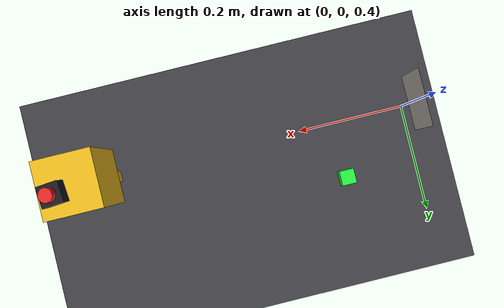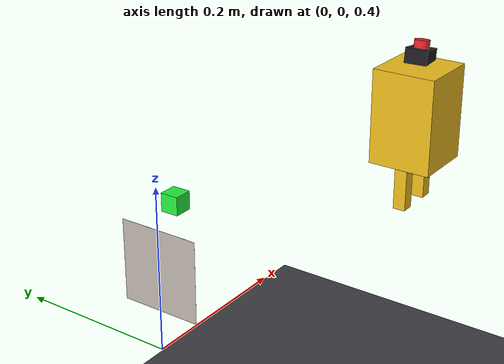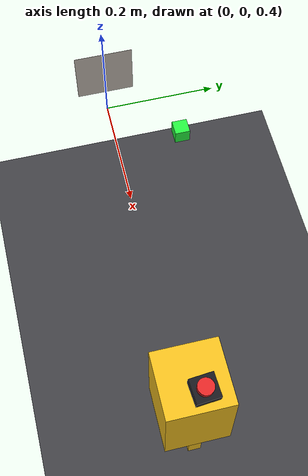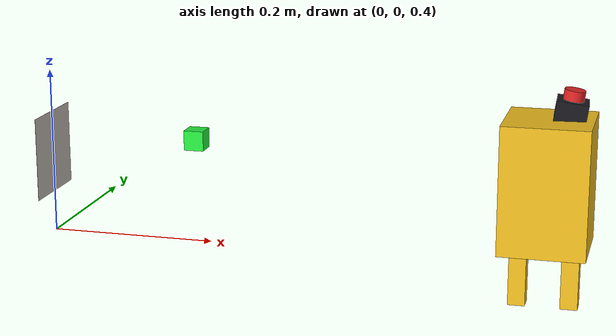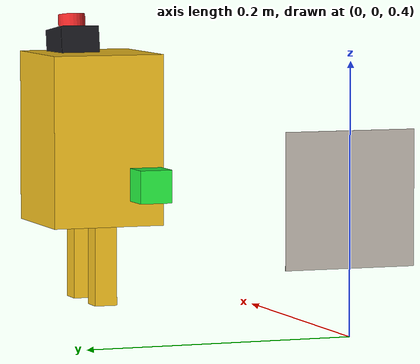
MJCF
<mujoco model="eye_in_hand_calib">
  <compiler angle="radian" autolimits="true"/>
  <option gravity="0 0 0" timestep="0.002"/>

  <visual>
    <global offwidth="1280" offheight="720"/>
    <quality shadowsize="4096"/>
    <rgba fog="0 0 0 0"/>
  </visual>

  <asset>
    <texture name="grid_tex" type="2d" builtin="checker" width="256" height="256"
             rgb1="0.22 0.22 0.24" rgb2="0.28 0.28 0.30"/>
    <material name="grid_mat" texture="grid_tex" texrepeat="6 6"
              specular="0.1" shininess="0.1"/>

    <texture name="aruco_tex" type="2d" file="assets/aruco_marker.png"/>
    <!-- emission=1 guarantees white cells render as full white regardless of
         lighting, which the ArUco detector needs for corner contrast. -->
    <material name="aruco_mat" texture="aruco_tex"
              specular="0" shininess="0" emission="1.0" rgba="1 1 1 1"/>

    <material name="gripper_mat" rgba="0.95 0.75 0.12 1" specular="0.2" shininess="0.3"/>
    <material name="camera_mat"  rgba="0.10 0.10 0.12 1" specular="0.3" shininess="0.4"/>
    <material name="cube_true_mat"  rgba="0.15 0.95 0.25 1"    emission="0.35" specular="0.2" shininess="0.2"/>
    <material name="cube_ghost_mat" rgba="0.98 0.12 0.18 0.55" emission="0.45" specular="0.0" shininess="0.0"/>
  </asset>

  <worldbody>
    <light name="sun"  pos="0 0 4"        dir="0 0 -1"      diffuse="0.8 0.8 0.8"/>
    <light name="fill" pos="1.5 -1.5 3"   dir="-0.5 0.5 -1" diffuse="0.4 0.4 0.4"/>
    <light name="rim"  pos="-0.5 2 2"     dir="0.2 -0.5 -1" diffuse="0.3 0.3 0.3"/>

    <geom name="ground" type="plane" size="3 3 0.1" material="grid_mat"/>

    <body name="aruco_body" pos="0.0 0.0 0.5" zaxis="1 0 0">
      <geom name="aruco_geom" type="plane" size="0.05 0.05 0.01"
            material="aruco_mat"/>
    </body>

    <camera name="iso_cam" mode="fixed" pos="0.9 -0.9 0.9"
            xyaxes="0.707 0.707 0  -0.408 0.408 0.816" fovy="45"/>
    <camera name="top_cam" mode="fixed" pos="0.3 0.0 1.3"
            xyaxes="0 -1 0  1 0 0" fovy="55"/>
    <!-- Tighter iso-angle camera focused on the marker + reach zone. Used as
         the default camera for the auto-generated reach video. -->
    <camera name="reach_cam" mode="fixed" pos="0.55 -0.55 0.80"
            xyaxes="0.707 0.707 0  -0.408 0.408 0.816" fovy="50"/>

    <body name="gripper" pos="0.6 0.0 0.5">
      <freejoint name="gripper_free"/>
      <geom name="gripper_body" type="box" size="0.050 0.050 0.075"
            material="gripper_mat" group="2"/>
      <!-- Two small prongs to make the "gripper" recognisable as a hand
           in playback, rather than a floating box. -->
      <geom name="gripper_prong_l" type="box" size="0.010 0.010 0.035"
            pos="0.030 0.0 -0.110" material="gripper_mat" group="2"/>
      <geom name="gripper_prong_r" type="box" size="0.010 0.010 0.035"
            pos="-0.030 0.0 -0.110" material="gripper_mat" group="2"/>

      <body name="camera_mount" pos="0.020 0.010 0.070" euler="0.00 0.15 0.08">
        <geom name="camera_body" type="box" size="0.018 0.018 0.026"
              material="camera_mat" group="2"/>
        <!-- Small red "lens" stub on +z face so the camera pointing
             direction is obvious in the video. -->
        <geom name="camera_lens" type="cylinder" size="0.012 0.008"
              pos="0 0 0.030" rgba="0.9 0.15 0.15 1" group="2"/>
        <camera name="wrist_cam" fovy="58" pos="0 0 0"/>
      </body>
    </body>

    <!-- 2.5 cm cubes (half-extent 0.0125 m) -- picked so prong gap of 6 cm
         still straddles them cleanly with generous margin (cube/prong
         clearance = (60 - 25)/2 = 17.5 mm each side). -->
    <body name="target_cube" pos="0.15 0.10 0.50">
      <freejoint name="target_cube_free"/>
      <geom name="target_cube_geom" type="box" size="0.0125 0.0125 0.0125"
            material="cube_true_mat" group="2"/>
    </body>
    <body name="ghost_cube" pos="0.15 0.10 0.50">
      <freejoint name="ghost_cube_free"/>
      <geom name="ghost_cube_geom" type="box" size="0.0125 0.0125 0.0125"
            material="cube_ghost_mat" group="2"/>
    </body>
  </worldbody>
</mujoco>
